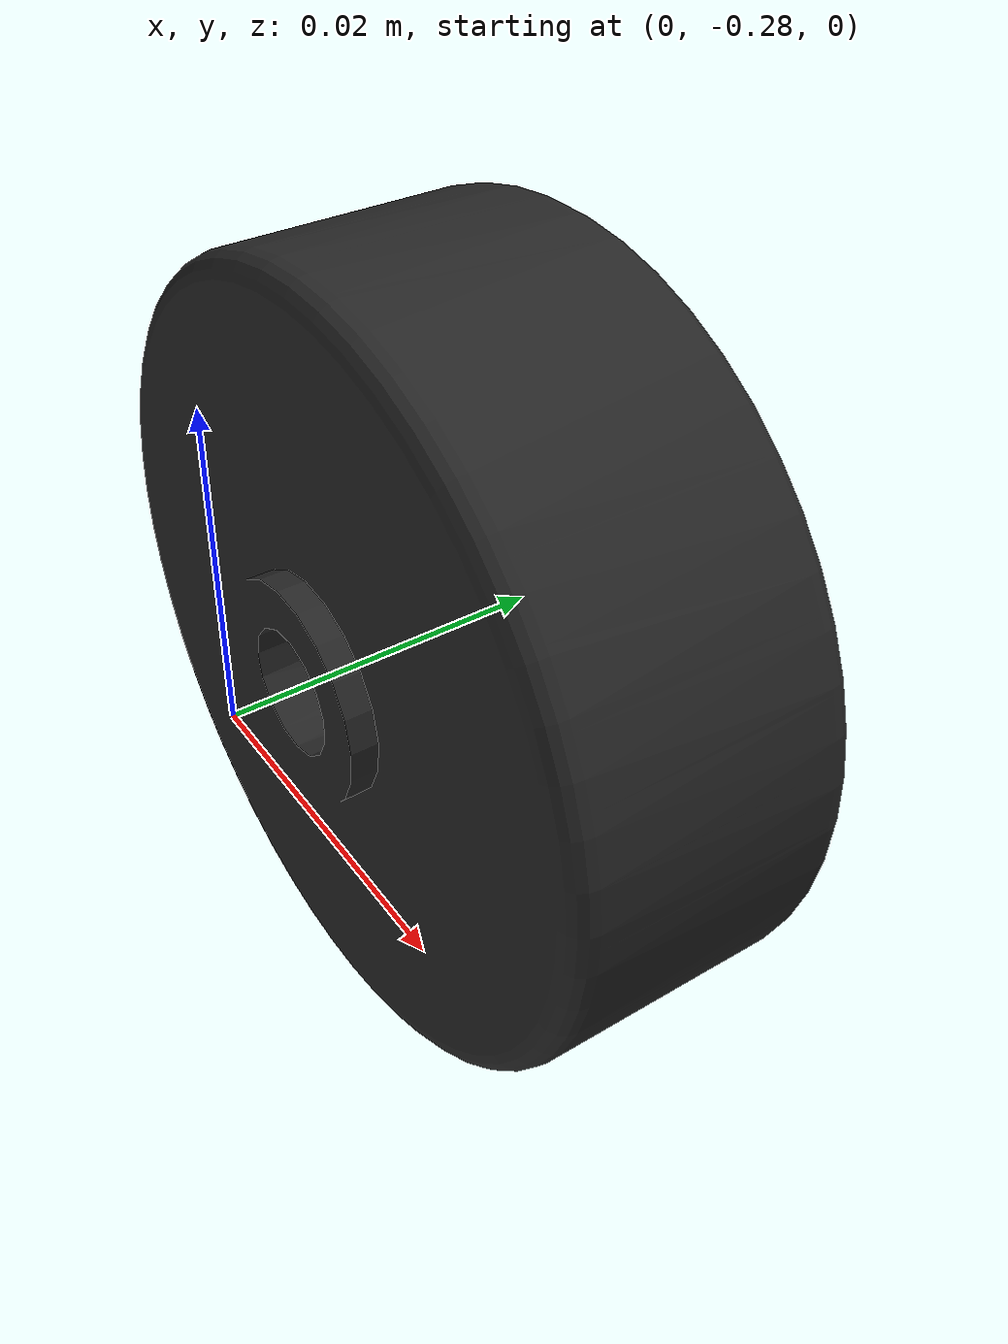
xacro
<robot name="RL_Wheel_link"><link name="RL_Wheel_link">
    <inertial>
      <origin rpy="0 0 0" xyz="-0.00160662477936549 -2.59222765522371E-06 1.49952106412736E-05" />
      <mass value="3.83427523542708" />
      <inertia ixx="0.0296525526119397" ixy="1.5100179619978E-06" ixz="2.35767335983606E-06" iyy="0.0163749526769378" iyz="1.22544931791974E-06" izz="0.0163720506885898" />
    </inertial>
    <visual>
      <origin rpy="0 0 0" xyz="0 0 0" />
      <geometry>
        <mesh filename="package://robotican_description/komodo/meshes/RL_Wheel_link.STL" />
      </geometry>
      <material name="">
        <color rgba="0.15 0.15 0.15 1" />
      </material>
    </visual>
    <collision>
      <origin rpy="0 0 0" xyz="0 0 0" />
      <geometry>
        <mesh filename="package://robotican_description/komodo/meshes/RL_Wheel_link.STL" />
      </geometry>
    </collision>
  </link>
  </robot>
